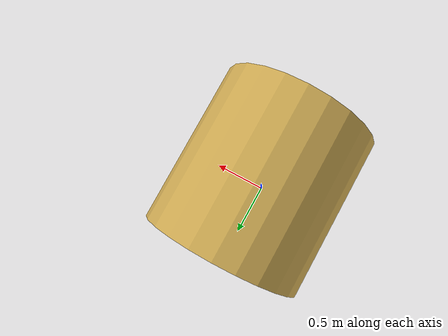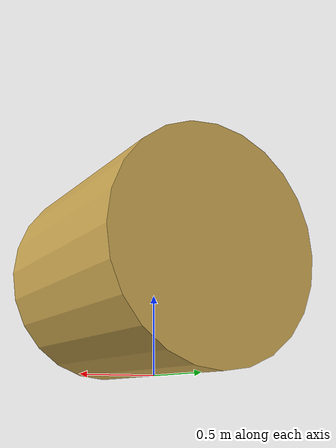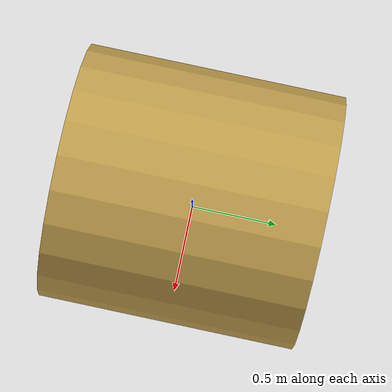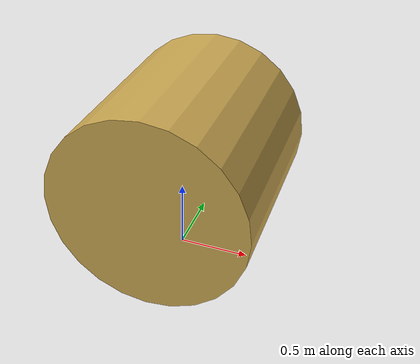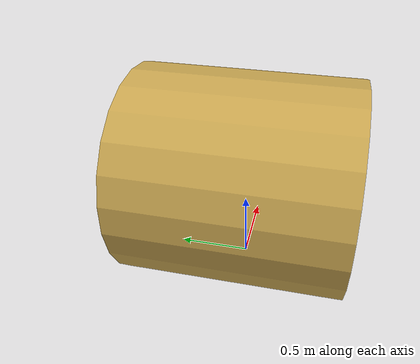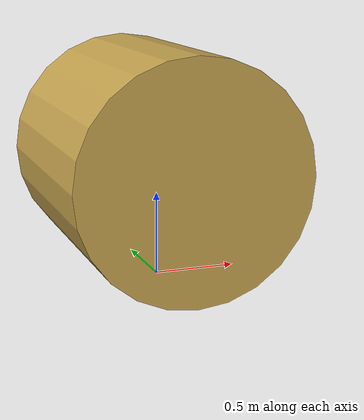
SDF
<?xml version="1.0" ?>
<sdf version="1.9">
  <model name="hay_bale">
    <static>true</static>
    <link name="link">
      <!-- round bale lying on its side: cylinder rotated 90deg about x.
           Pose z from place_on_terrain.py puts the axis ~0.7 m up. -->
      <visual name="visual">
        <cast_shadows>false</cast_shadows>
        <pose>0 0 0.7 1.5708 0 0</pose>
        <geometry>
          <cylinder><radius>0.7</radius><length>1.4</length></cylinder>
        </geometry>
        <material>
          <ambient>0.55 0.45 0.20 1</ambient>
          <diffuse>0.80 0.66 0.32 1</diffuse>
          <specular>0.1 0.1 0.1 1</specular>
        </material>
      </visual>
    </link>
  </model>
</sdf>
